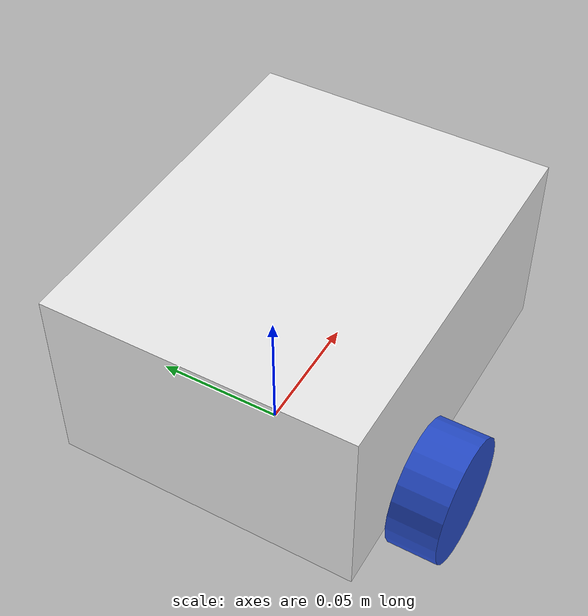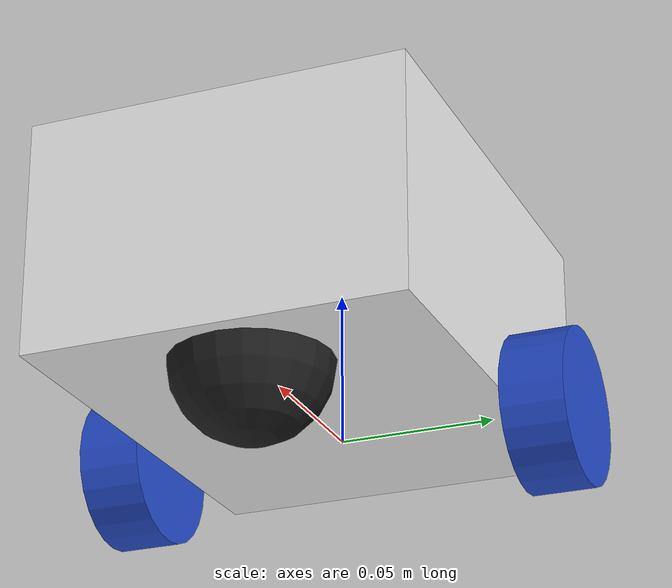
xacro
<?xml version="1.0"?>
<robot xmlns:xacro="http://www.ros.org/wiki/xacro" >

    <xacro:include filename="inertial_macros.xacro"/>
    <xacro:include filename="materials.xacro"/>

    <!-- BASE LINK -->
    <link name="base_link">
    </link>

    <!-- BASE_FOOTPRINT LINK -->

    <joint name="base_footprint_joint" type="fixed">
        <parent link="base_link"/>
        <child link="base_footprint"/>
        <origin xyz="0 0 0" rpy="0 0 0"/>
    </joint>

    <link name="base_footprint">
    </link>

    <!-- CHASSIS LINK -->

    <joint name="chassis_joint" type="fixed">
        <parent link="base_link"/>
        <child link="chassis"/>
        <origin xyz="-0.05 0 0"/>
    </joint>

    <link name="chassis">
        <visual>
            <origin xyz="0.075 0 0.0375"/>
            <geometry>
                <box size="0.15 0.12 0.075"/>
            </geometry>
            <material name="white"/>
        </visual>
        <collision>
            <origin xyz="0.075 0 0.0375"/>
            <geometry>
                <box size="0.15 0.12 0.075"/>
            </geometry>
        </collision>
        <xacro:inertial_box mass="0.5" x="0.15" y="0.12" z="0.075">
            <origin xyz="0.075 0 0.0375" rpy="0 0 0"/>
        </xacro:inertial_box>

    </link>

    <!-- LEFT WHEEL LINK -->

    <joint name="left_wheel_joint" type="continuous">
        <parent link="base_link"/>
        <child link="left_wheel"/>
        <origin xyz="0 0.07 0" rpy="-${pi/2} 0 0" />
        <axis xyz="0 0 1"/>
    </joint>

    <link name="left_wheel">
        <visual>
            <geometry>
                <cylinder radius="0.025" length="0.02"/>
            </geometry>
            <material name="blue"/>
        </visual>
        <collision>
            <geometry>
                <cylinder radius="0.025" length="0.02"/>
            </geometry>
        </collision>
        <xacro:inertial_cylinder mass="0.1" length="0.02" radius="0.025">
            <origin xyz="0 0 0" rpy="0 0 0"/>
        </xacro:inertial_cylinder>
    </link>

    <!-- RIGHT WHEEL LINK -->

    <joint name="right_wheel_joint" type="continuous">
        <parent link="base_link"/>
        <child link="right_wheel"/>
        <origin xyz="0 -0.07 0" rpy="${pi/2} 0 0" />
        <axis xyz="0 0 -1"/>
    </joint>

    <link name="right_wheel">
        <visual>
            <geometry>
                <cylinder radius="0.025" length="0.02"/>
            </geometry>
            <material name="blue"/>
        </visual>
        <collision>
            <geometry>
                <cylinder radius="0.025" length="0.02"/>
            </geometry>
        </collision>
        <xacro:inertial_cylinder mass="0.1" length="0.02" radius="0.025">
            <origin xyz="0 0 0" rpy="0 0 0"/>
        </xacro:inertial_cylinder>
    </link>

    <!-- CASTER WHEEL LINK -->

    <joint name="caster_wheel_joint" type="fixed">
        <parent link="chassis"/>
        <child link="caster_wheel"/>
        <origin xyz="0.12 0 0"/>
    </joint>

    <link name="caster_wheel">
        <visual>
            <geometry>
                <sphere radius="0.025"/>
            </geometry>
            <material name="black"/>
        </visual>
        <collision>
            <geometry>
                <sphere radius="0.025"/>
            </geometry>
        </collision>
        <xacro:inertial_sphere mass="0.1" radius="0.025">
            <origin xyz="0 0 0" rpy="0 0 0"/>
        </xacro:inertial_sphere>
    </link>

    <gazebo reference="caster_wheel">
        <mu1 value="0.001"/>
        <mu2 value="0.001"/>
    </gazebo>

    <xacro:include filename="ros2_control.xacro" />

</robot>
